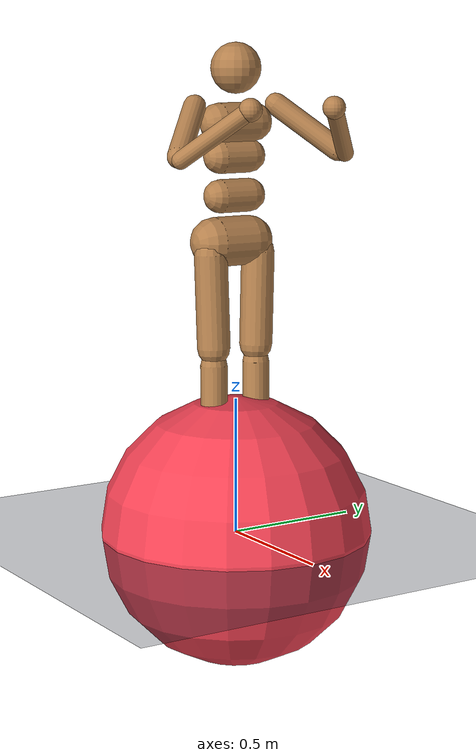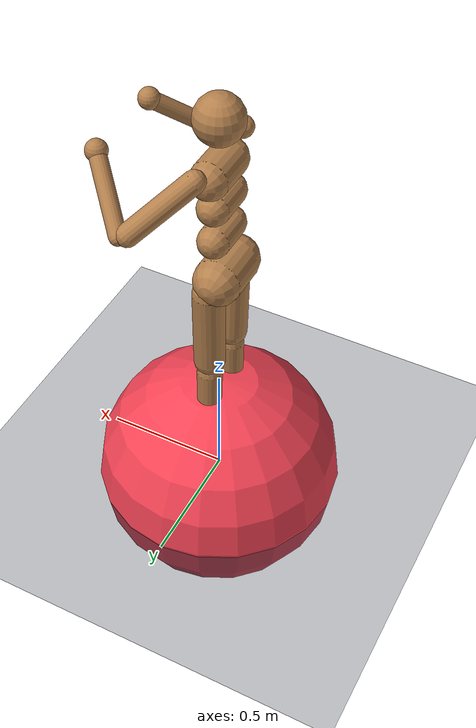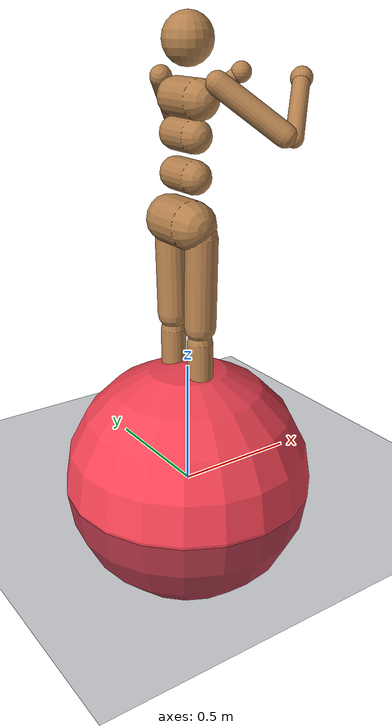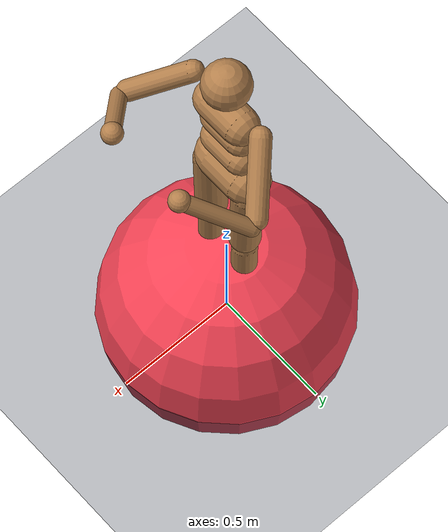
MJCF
<mujoco model="humanoid_maze_ogbench">
    <compiler angle="degree" inertiafromgeom="true"/>

    <option timestep="0.005"/>

    <custom>
        <!-- brax custom params -->
        <!-- qpos: torso_xyz(3) + torso_quat(4) + 21 hinges + target_xy(2) = 30 -->
        <numeric data="0.0 0.0 1.5 1.0 0.0 0.0 0.0 0.0 0.0 0.0 0.0 0.0 0.0 0.0 0.0 0.0 0.0 0.0 0.0 0.0 0.0 0.0 0.0 0.0 0.0 0.0 0.0 0.0 0.0 0.0" name="init_qpos"/>
        <numeric data="2500" name="constraint_limit_stiffness"/>
        <numeric data="27000" name="constraint_stiffness"/>
        <numeric data="30" name="constraint_ang_damping"/>
        <numeric data="80" name="constraint_vel_damping"/>
        <numeric data="-0.05" name="ang_damping"/>
        <numeric data="0.5" name="joint_scale_pos"/>
        <numeric data="0.1" name="joint_scale_ang"/>
        <numeric data="0" name="spring_mass_scale"/>
        <numeric data="1" name="spring_inertia_scale"/>
        <numeric data="20" name="matrix_inv_iterations"/>
        <numeric data="15" name="solver_maxls"/>
    </custom>

    <default>
        <motor ctrlrange="-1 1" ctrllimited="true"/>
        <default class="body">
            <geom type="capsule" condim="1" friction=".7" solimp=".9 .99 .003" solref=".015 1" material="self"/>
            <joint type="hinge" damping=".2" stiffness="1" armature=".01" limited="true" solimplimit="0 .99 .01"/>
            <default class="big_joint">
                <joint damping="5" stiffness="10"/>
                <default class="big_stiff_joint">
                    <joint stiffness="20"/>
                </default>
            </default>
        </default>
    </default>

    <asset>
        <texture type="skybox" builtin="gradient" width="100" height="100" rgb1="1 1 1" rgb2="0 0 0"/>
        <texture name="grid" type="2d" builtin="checker" rgb1=".08 .11 .16" rgb2=".15 .18 .25" width="300" height="300"/>
        <material name="grid" texture="grid" texrepeat="1 1" texuniform="true"/>
        <material name="self" rgba=".7 .5 .3 1"/>
        <material name="self_default" rgba=".7 .5 .3 1"/>
        <material name="self_white" rgba=".8 .8 .8 1"/>
        <material name="wall" rgba="1 1 1 1"/>
        <material name="target" rgba="0.96 0.26 0.33 1"/>
    </asset>

    <worldbody>
        <light name="global" directional="true" cutoff="100" exponent="1" ambient=".2 .2 .2" diffuse="1 1 1" specular=".1 .1 .1" pos="0 0 1.3" dir="-0 0 -1.3"/>
        <geom name="floor" type="plane" conaffinity="1" size="100 100 .2" material="grid"/>
        <body name="torso" pos="0 0 1.5" childclass="body">
            <camera name="back" pos="0 -2.5 5" xyaxes="1 0 0 0 2 1" mode="trackcom"/>
            <freejoint name="root"/>
            <geom name="torso" fromto="0 -.07 0 0 .07 0" size=".07"/>
            <light name="torso_light" pos="0 0 8" mode="trackcom"/>
            <geom name="upper_waist" fromto="-.01 -.06 -.12 -.01 .06 -.12" size=".06"/>
            <body name="head" pos="0 0 .19">
                <geom name="head" type="sphere" size=".09"/>
            </body>
            <body name="lower_waist" pos="-.01 0 -.260" quat="1.000 0 -.002 0">
                <geom name="lower_waist" fromto="0 -.06 0 0 .06 0" size=".06"/>
                <joint name="abdomen_z" pos="0 0 .065" axis="0 0 1" range="-45 45" class="big_stiff_joint"/>
                <joint name="abdomen_y" pos="0 0 .065" axis="0 1 0" range="-75 30" class="big_joint"/>
                <body name="pelvis" pos="0 0 -.165" quat="1.000 0 -.002 0">
                    <joint name="abdomen_x" pos="0 0 .1" axis="1 0 0" range="-35 35" class="big_joint"/>
                    <geom name="butt" fromto="-.02 -.07 0 -.02 .07 0" size=".09"/>
                    <body name="right_thigh" pos="0 -.1 -.04">
                        <joint name="right_hip_x" axis="1 0 0" range="-25 5" class="big_joint"/>
                        <joint name="right_hip_z" axis="0 0 1" range="-60 35" class="big_joint"/>
                        <joint name="right_hip_y" axis="0 1 0" range="-110 20" class="big_stiff_joint"/>
                        <geom name="right_thigh" fromto="0 0 0 0 .01 -.34" size=".06"/>
                        <body name="right_shin" pos="0 .01 -.403">
                            <joint name="right_knee" pos="0 0 .02" axis="0 -1 0" range="-160 -2"/>
                            <geom name="right_shin" fromto="0 0 0 0 0 -.3" size=".049"/>
                            <body name="right_foot" pos="0 0 -.39">
                                <joint name="right_ankle_y" pos="0 0 .06" axis="0 1 0" range="-50 50" stiffness="6"/>
                                <joint name="right_ankle_x" pos="0 0 .06" axis="1 0 .5" range="-50 50" stiffness="3"/>
                                <geom name="right_right_foot" fromto="-.07 -.02 0 .14 -.04 0" size=".027"/>
                                <geom name="left_right_foot" fromto="-.07 0 0 .14 .02 0" size=".027"/>
                            </body>
                        </body>
                    </body>
                    <body name="left_thigh" pos="0 .1 -.04">
                        <joint name="left_hip_x" axis="-1 0 0" range="-25 5" class="big_joint"/>
                        <joint name="left_hip_z" axis="0 0 -1" range="-60 35" class="big_joint"/>
                        <joint name="left_hip_y" axis="0 1 0" range="-120 20" class="big_stiff_joint"/>
                        <geom name="left_thigh" fromto="0 0 0 0 -.01 -.34" size=".06"/>
                        <body name="left_shin" pos="0 -.01 -.403">
                            <joint name="left_knee" pos="0 0 .02" axis="0 -1 0" range="-160 -2"/>
                            <geom name="left_shin" fromto="0 0 0 0 0 -.3" size=".049"/>
                            <body name="left_foot" pos="0 0 -.39">
                                <!-- ankle_y/ankle_x anchors merged; see right_foot comment. -->
                                <joint name="left_ankle_y" pos="0 0 .06" axis="0 1 0" range="-50 50" stiffness="6"/>
                                <joint name="left_ankle_x" pos="0 0 .06" axis="1 0 .5" range="-50 50" stiffness="3"/>
                                <geom name="left_left_foot" fromto="-.07 .02 0 .14 .04 0" size=".027"/>
                                <geom name="right_left_foot" fromto="-.07 0 0 .14 -.02 0" size=".027"/>
                            </body>
                        </body>
                    </body>
                </body>
            </body>
            <body name="right_upper_arm" pos="0 -.17 .06">
                <joint name="right_shoulder1" axis="2 1 1" range="-85 60"/>
                <joint name="right_shoulder2" axis="0 -1 1" range="-85 60"/>
                <geom name="right_upper_arm" fromto="0 0 0 .16 -.16 -.16" size=".04 .16"/>
                <body name="right_lower_arm" pos=".18 -.18 -.18">
                    <joint name="right_elbow" axis="0 -1 1" range="-90 50" stiffness="0"/>
                    <geom name="right_lower_arm" fromto=".01 .01 .01 .17 .17 .17" size=".031"/>
                    <body name="right_hand" pos=".18 .18 .18">
                        <geom name="right_hand" type="sphere" size=".04"/>
                    </body>
                </body>
            </body>
            <body name="left_upper_arm" pos="0 .17 .06">
                <joint name="left_shoulder1" axis="2 -1 1" range="-60 85"/>
                <joint name="left_shoulder2" axis="0 1 1" range="-60 85"/>
                <geom name="left_upper_arm" fromto="0 0 0 .16 .16 -.16" size=".04 .16"/>
                <body name="left_lower_arm" pos=".18 .18 -.18">
                    <joint name="left_elbow" axis="0 -1 -1" range="-90 50" stiffness="0"/>
                    <geom name="left_lower_arm" fromto=".01 -.01 .01 .17 -.17 .17" size=".031"/>
                    <body name="left_hand" pos=".18 -.18 .18">
                        <geom name="left_hand" type="sphere" size=".04"/>
                    </body>
                </body>
            </body>
        </body>

        <!-- Non-physical target marker for GCRL goal specification.
             Two slide joints at the end of q/qd, stripped by _get_obs via q[:-2]. -->
        <body name="target" pos="0 0 0.01">
            <joint armature="0" axis="1 0 0" damping="0" limited="true" name="target_x" pos="0 0 0" range="-100 100" stiffness="0" type="slide"/>
            <joint armature="0" axis="0 1 0" damping="0" limited="true" name="target_y" pos="0 0 0" range="-100 100" stiffness="0" type="slide"/>
            <geom conaffinity="0" contype="0" name="target" pos="0 0 0" size=".5" type="sphere" mass="1.0" material="target"/>
        </body>
    </worldbody>

    <actuator>
        <motor name="abdomen_y" gear="40" joint="abdomen_y"/>
        <motor name="abdomen_z" gear="40" joint="abdomen_z"/>
        <motor name="abdomen_x" gear="40" joint="abdomen_x"/>
        <motor name="right_hip_x" gear="40" joint="right_hip_x"/>
        <motor name="right_hip_z" gear="40" joint="right_hip_z"/>
        <motor name="right_hip_y" gear="120" joint="right_hip_y"/>
        <motor name="right_knee" gear="80" joint="right_knee"/>
        <motor name="right_ankle_x" gear="20" joint="right_ankle_x"/>
        <motor name="right_ankle_y" gear="20" joint="right_ankle_y"/>
        <motor name="left_hip_x" gear="40" joint="left_hip_x"/>
        <motor name="left_hip_z" gear="40" joint="left_hip_z"/>
        <motor name="left_hip_y" gear="120" joint="left_hip_y"/>
        <motor name="left_knee" gear="80" joint="left_knee"/>
        <motor name="left_ankle_x" gear="20" joint="left_ankle_x"/>
        <motor name="left_ankle_y" gear="20" joint="left_ankle_y"/>
        <motor name="right_shoulder1" gear="20" joint="right_shoulder1"/>
        <motor name="right_shoulder2" gear="20" joint="right_shoulder2"/>
        <motor name="right_elbow" gear="40" joint="right_elbow"/>
        <motor name="left_shoulder1" gear="20" joint="left_shoulder1"/>
        <motor name="left_shoulder2" gear="20" joint="left_shoulder2"/>
        <motor name="left_elbow" gear="40" joint="left_elbow"/>
    </actuator>
</mujoco>
